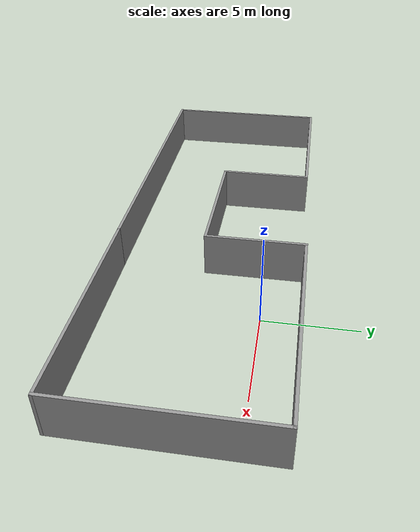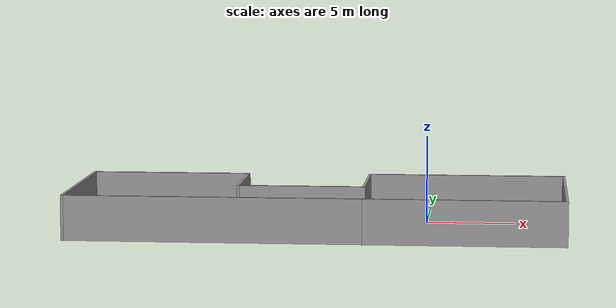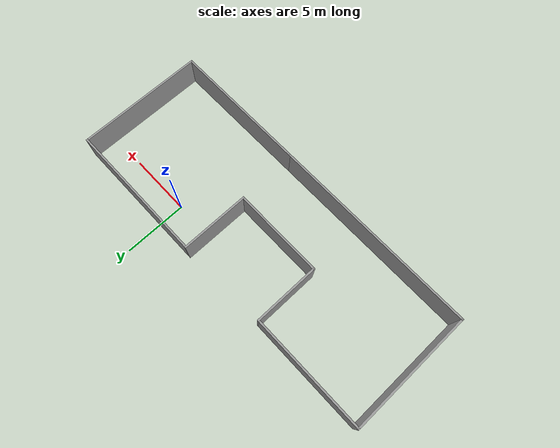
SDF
<?xml version='1.0'?>
<sdf version='1.7'>
  <model name='simple'>
    <pose>-5.89703 -3.05486 0 0 -0 0</pose>
    <link name='Wall_10'>
      <collision name='Wall_10_Collision'>
        <geometry>
          <box>
            <size>5.5 0.15 2.5</size>
          </box>
        </geometry>
        <pose>0 0 1.25 0 -0 0</pose>
      </collision>
      <visual name='Wall_10_Visual'>
        <pose>0 0 1.25 0 -0 0</pose>
        <geometry>
          <box>
            <size>5.5 0.15 2.5</size>
          </box>
        </geometry>
        <material>
          <script>
            <uri>file://media/materials/scripts/gazebo.material</uri>
            <name>Gazebo/Grey</name>
          </script>
          <ambient>1 1 1 1</ambient>
        </material>
        <meta>
          <layer>0</layer>
        </meta>
      </visual>
      <pose>2.475 2.375 0 0 -0 1.5708</pose>
    </link>
    <link name='Wall_2'>
      <collision name='Wall_2_Collision'>
        <geometry>
          <box>
            <size>11.25 0.15 2.5</size>
          </box>
        </geometry>
        <pose>0 0 1.25 0 -0 0</pose>
      </collision>
      <visual name='Wall_2_Visual'>
        <pose>0 0 1.25 0 -0 0</pose>
        <geometry>
          <box>
            <size>11.25 0.15 2.5</size>
          </box>
        </geometry>
        <material>
          <script>
            <uri>file://media/materials/scripts/gazebo.material</uri>
            <name>Gazebo/Grey</name>
          </script>
          <ambient>1 1 1 1</ambient>
        </material>
        <meta>
          <layer>0</layer>
        </meta>
      </visual>
      <pose>8.175 5.05 0 0 -0 0</pose>
    </link>
    <link name='Wall_3'>
      <collision name='Wall_3_Collision'>
        <geometry>
          <box>
            <size>10.25 0.15 2.5</size>
          </box>
        </geometry>
        <pose>0 0 1.25 0 -0 0</pose>
      </collision>
      <visual name='Wall_3_Visual'>
        <pose>0 0 1.25 0 -0 0</pose>
        <geometry>
          <box>
            <size>10.25 0.15 2.5</size>
          </box>
        </geometry>
        <material>
          <script>
            <uri>file://media/materials/scripts/gazebo.material</uri>
            <name>Gazebo/Grey</name>
          </script>
          <ambient>1 1 1 1</ambient>
        </material>
        <meta>
          <layer>0</layer>
        </meta>
      </visual>
      <pose>13.725 -0 0 0 -0 -1.5708</pose>
    </link>
    <link name='Wall_4'>
      <collision name='Wall_4_Collision'>
        <geometry>
          <box>
            <size>11.25 0.15 2.5</size>
          </box>
        </geometry>
        <pose>0 0 1.25 0 -0 0</pose>
      </collision>
      <visual name='Wall_4_Visual'>
        <pose>0 0 1.25 0 -0 0</pose>
        <geometry>
          <box>
            <size>11.25 0.15 2.5</size>
          </box>
        </geometry>
        <material>
          <script>
            <uri>file://media/materials/scripts/gazebo.material</uri>
            <name>Gazebo/Grey</name>
          </script>
          <ambient>1 1 1 1</ambient>
        </material>
        <meta>
          <layer>0</layer>
        </meta>
      </visual>
      <pose>8.175 -5.05 0 0 -0 3.14159</pose>
    </link>
    <link name='Wall_5'>
      <collision name='Wall_5_Collision'>
        <geometry>
          <box>
            <size>16.5 0.15 2.5</size>
          </box>
        </geometry>
        <pose>0 0 1.25 0 -0 0</pose>
      </collision>
      <visual name='Wall_5_Visual'>
        <pose>0 0 1.25 0 -0 0</pose>
        <geometry>
          <box>
            <size>16.5 0.15 2.5</size>
          </box>
        </geometry>
        <material>
          <script>
            <uri>file://media/materials/scripts/gazebo.material</uri>
            <name>Gazebo/Grey</name>
          </script>
          <ambient>1 1 1 1</ambient>
        </material>
        <meta>
          <layer>0</layer>
        </meta>
      </visual>
      <pose>-5.55 -5.05 0 0 -0 3.14159</pose>
    </link>
    <link name='Wall_6'>
      <collision name='Wall_6_Collision'>
        <geometry>
          <box>
            <size>10 0.15 2.5</size>
          </box>
        </geometry>
        <pose>0 0 1.25 0 -0 0</pose>
      </collision>
      <visual name='Wall_6_Visual'>
        <pose>0 0 1.25 0 -0 0</pose>
        <geometry>
          <box>
            <size>10 0.15 2.5</size>
          </box>
        </geometry>
        <material>
          <script>
            <uri>file://media/materials/scripts/gazebo.material</uri>
            <name>Gazebo/Grey</name>
          </script>
          <ambient>1 1 1 1</ambient>
        </material>
        <meta>
          <layer>0</layer>
        </meta>
      </visual>
      <pose>-13.725 -0.125 0 0 -0 1.5708</pose>
    </link>
    <link name='Wall_7'>
      <collision name='Wall_7_Collision'>
        <geometry>
          <box>
            <size>9.25 0.15 2.5</size>
          </box>
        </geometry>
        <pose>0 0 1.25 0 -0 0</pose>
      </collision>
      <visual name='Wall_7_Visual'>
        <pose>0 0 1.25 0 -0 0</pose>
        <geometry>
          <box>
            <size>9.25 0.15 2.5</size>
          </box>
        </geometry>
        <material>
          <script>
            <uri>file://media/materials/scripts/gazebo.material</uri>
            <name>Gazebo/Grey</name>
          </script>
          <ambient>1 1 1 1</ambient>
        </material>
        <meta>
          <layer>0</layer>
        </meta>
      </visual>
      <pose>-9.175 4.8 0 0 -0 0</pose>
    </link>
    <link name='Wall_8'>
      <collision name='Wall_8_Collision'>
        <geometry>
          <box>
            <size>5.25 0.15 2.5</size>
          </box>
        </geometry>
        <pose>0 0 1.25 0 -0 0</pose>
      </collision>
      <visual name='Wall_8_Visual'>
        <pose>0 0 1.25 0 -0 0</pose>
        <geometry>
          <box>
            <size>5.25 0.15 2.5</size>
          </box>
        </geometry>
        <material>
          <script>
            <uri>file://media/materials/scripts/gazebo.material</uri>
            <name>Gazebo/Grey</name>
          </script>
          <ambient>1 1 1 1</ambient>
        </material>
        <meta>
          <layer>0</layer>
        </meta>
      </visual>
      <pose>-4.625 2.25 0 0 -0 -1.5708</pose>
    </link>
    <link name='Wall_9'>
      <collision name='Wall_9_Collision'>
        <geometry>
          <box>
            <size>7.25 0.15 2.5</size>
          </box>
        </geometry>
        <pose>0 0 1.25 0 -0 0</pose>
      </collision>
      <visual name='Wall_9_Visual'>
        <pose>0 0 1.25 0 -0 0</pose>
        <geometry>
          <box>
            <size>7.25 0.15 2.5</size>
          </box>
        </geometry>
        <material>
          <script>
            <uri>file://media/materials/scripts/gazebo.material</uri>
            <name>Gazebo/Grey</name>
          </script>
          <ambient>1 1 1 1</ambient>
        </material>
        <meta>
          <layer>0</layer>
        </meta>
      </visual>
      <pose>-1.075 -0.3 0 0 -0 0</pose>
    </link>
    <static>1</static>
  </model>
</sdf>
